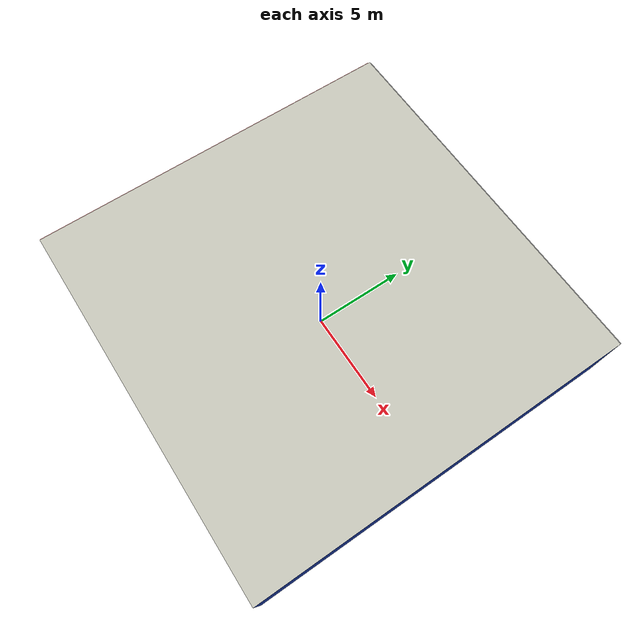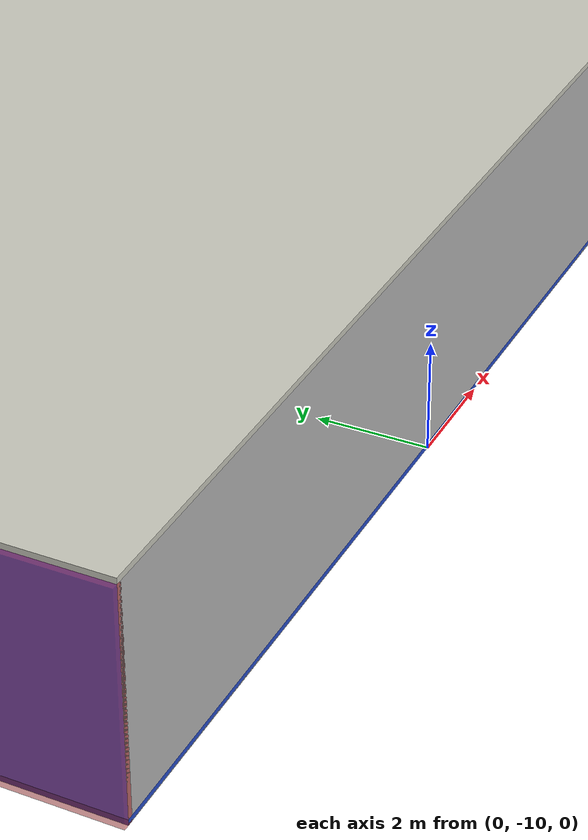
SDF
<sdf version="1.4">
 <world name="default">
  <physics type="ode">
   <max_step_size>0.001</max_step_size>
   <real_time_factor>1</real_time_factor>
   <real_time_update_rate>1000</real_time_update_rate>
   <gravity>0 0 -9.8</gravity>
  </physics>
  <scene><ambient>0.4 0.4 0.4 1</ambient><background>0.7 0.7 0.7 1</background><shadows>1</shadows></scene>
  <model name="Surrounding">
   <static>1</static>
   <link name="Ceiling">
    <collision name="Ceiling_Collision"><geometry><box><size>20 20 0.1</size></box></geometry></collision>
    <visual name="Ceiling_Visual">
     <geometry><box><size>20 20 0.1</size></box></geometry>
     <material>
      <script><uri>file://media/materials/scripts/gazebo.material</uri><name>Gazebo/PaintedWall</name></script>
     </material>
    </visual>
    <pose>0 0 4.05 0 0 0</pose>
   </link>
   <link name="Wall_South">
    <collision name="Wall_South_Collision">
     <geometry><box><size>20 0 4</size></box></geometry>
     <pose>0 0 2 0 -0 0</pose>
    </collision>
    <visual name="Wall_South_Visual">
     <pose>0 0 2 0 -0 0</pose>
     <geometry><box><size>20 0 4</size></box></geometry>
     <material>
      <script><uri>file://media/materials/scripts/gazebo.material</uri><name>Gazebo/PioneerBody</name></script>
     </material>
    </visual>
    <velocity_decay><linear>0</linear><angular>0</angular></velocity_decay>
    <pose>0 -10 0 0 -0 0</pose>
   </link>
   <link name="Wall_East">
    <collision name="Wall_21_Collision">
     <geometry><box><size>20 0 4</size></box></geometry>
     <pose>0 0 2 0 -0 0</pose>
    </collision>
    <visual name="Wall_21_Visual">
     <pose>0 0 2 0 -0 0</pose>
     <geometry><box><size>20 0 4</size></box></geometry>
     <material>
      <script><uri>file://media/materials/scripts/gazebo.material</uri><name>Gazebo/Blue</name></script>
     </material>
    </visual>
    <velocity_decay><linear>0</linear><angular>0</angular></velocity_decay>
    <pose>10 0 0 0 -0 1.5708</pose>
   </link>
   <link name="Wall_North">
    <collision name="Wall_22_Collision">
     <geometry><box><size>20 0.2 4</size></box></geometry>
     <pose>0 0 2 0 -0 0</pose>
    </collision>
    <visual name="Wall_22_Visual">
     <pose>0 0 2 0 -0 0</pose>
     <geometry><box><size>20 0.2 4</size></box></geometry>
     <material>
      <script><uri>file://media/materials/scripts/gazebo.material</uri><name>Gazebo/LightOff</name></script>
     </material>
    </visual>
    <velocity_decay><linear>0</linear><angular>0</angular></velocity_decay>
    <pose>0 10 0 0 -0 0</pose>
   </link>
   <link name="Wall_West">
    <collision name="Wall_23_Collision">
     <geometry><box><size>20 0.2 4</size></box></geometry>
     <pose>0 0 2 0 -0 0</pose>
    </collision>
    <visual name="Wall_23_Visual">
     <pose>0 0 2 0 -0 0</pose>
     <geometry><box><size>20 0.2 4</size></box></geometry>
     <material>
      <script><uri>file://media/materials/scripts/gazebo.material</uri><name>Gazebo/RedTransparent</name></script>
     </material>
    </visual>
    <velocity_decay><linear>0</linear><angular>0</angular></velocity_decay>
    <pose>-10 0 0 0 0 -1.5708</pose>
   </link>
   <link name="Ground_link">
    <collision name="collision">
     <pose>0 0 .05 0 -0 0</pose>
     <geometry><box><size>20 20 0.1</size></box></geometry>
    </collision>
    <visual name="visual">
     <pose>0 0 .05 0 -0 0</pose>
     <geometry><box><size>20 20 0.1</size></box></geometry>
     <material>
      <script><uri>file://media/materials/scripts/gazebo.material</uri><name>Gazebo/BlueLaser</name></script>
     </material>
    </visual>
   </link>
   <static>1</static>
  </model>
  <spherical_coordinates>
   <surface_model>EARTH_WGS84</surface_model>
   <latitude_deg>0</latitude_deg>
   <longitude_deg>0</longitude_deg>
   <elevation>0</elevation>
   <heading_deg>0</heading_deg>
  </spherical_coordinates>
  <light name="lightball_0" type="diffuse">
   <diffuse>0.8 0.8 0.8 1</diffuse>
   <specular>0.2 0.2 0.2 1</specular>
   <attenuation>
    <range>100</range>
    <constant>0.7</constant>
    <linear>0.01</linear>
    <quadratic>0.001</quadratic>
   </attenuation>
   <direction>-0.5 0.1 -0.9</direction>
   <pose>-3.74757150501 -2.6076606667 1.84429966862 0 0 0</pose>
  </light>
  <light name="lightball_1" type="diffuse">
   <diffuse>0.8 0.8 0.8 1</diffuse>
   <specular>0.2 0.2 0.2 1</specular>
   <attenuation>
    <range>100</range>
    <constant>0.7</constant>
    <linear>0.01</linear>
    <quadratic>0.001</quadratic>
   </attenuation>
   <direction>-0.5 0.1 -0.9</direction>
   <pose>0.734750347295 -6.3028518865 1.74604217853 0 0 0</pose>
  </light>
  <light name="lightball_2" type="diffuse">
   <diffuse>0.8 0.8 0.8 1</diffuse>
   <specular>0.2 0.2 0.2 1</specular>
   <attenuation>
    <range>100</range>
    <constant>0.7</constant>
    <linear>0.01</linear>
    <quadratic>0.001</quadratic>
   </attenuation>
   <direction>-0.5 0.1 -0.9</direction>
   <pose>4.47691980471 -3.57348693998 0.675177981425 0 0 0</pose>
  </light>
  <light name="lightball_3" type="diffuse">
   <diffuse>0.8 0.8 0.8 1</diffuse>
   <specular>0.2 0.2 0.2 1</specular>
   <attenuation>
    <range>100</range>
    <constant>0.7</constant>
    <linear>0.01</linear>
    <quadratic>0.001</quadratic>
   </attenuation>
   <direction>-0.5 0.1 -0.9</direction>
   <pose>8.13160478795 4.80523619585 0.552520722195 0 0 0</pose>
  </light>
  <light name="lightball_4" type="diffuse">
   <diffuse>0.8 0.8 0.8 1</diffuse>
   <specular>0.2 0.2 0.2 1</specular>
   <attenuation>
    <range>100</range>
    <constant>0.7</constant>
    <linear>0.01</linear>
    <quadratic>0.001</quadratic>
   </attenuation>
   <direction>-0.5 0.1 -0.9</direction>
   <pose>5.93312748515 9.01623725586 2.86606634139 0 0 0</pose>
  </light>
  <include><uri>model://cabinet</uri><pose>-7.94069498644 7.98751040111 0 0 0 0.0569104456228</pose></include>
 </world>
</sdf>

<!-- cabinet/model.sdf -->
<sdf version="1.5">
  <model name="cabinet">
    <static>true</static>
    <link name="cabinet_bottom_plate">
      <inertial>
        <pose>0 0 -1 0 0 0</pose>
        <inertia>
          <ixx>2.050000</ixx>
          <ixy>0</ixy>
          <ixz>0</ixz>
          <iyy>2.050000</iyy>
          <iyz>0</iyz>
          <izz>2.050000</izz>
        </inertia>
        <mass>25.000000</mass>
      </inertial>
      <collision name="cabinet_bottom_plate_geom">
        <pose>0 0 0.010000 0 0 0</pose>
        <geometry>
          <box>
            <size>0.450000 0.450000 0.020000</size>
          </box>
        </geometry>
      </collision>
      <visual name="cabinet_bottom_plate_geom_visual">
        <pose>0 0 0.010000 0 0 0</pose>
        <geometry>
          <box>
            <size>0.450000 0.450000 0.020000</size>
          </box>
        </geometry>
        <material>
          <script>
            <uri>model://media/materials/scripts/gazebo.material</uri>
            <name>Gazebo/Wood</name>
          </script>
        </material>
      </visual>
      <collision name="cabinet_bottom_plate_geom_cabinet_back_plate">
        <pose>0.235000 0 0.510000 0 0 0</pose>
        <geometry>
          <box>
            <size>0.020000 0.450000 1.020000</size>
          </box>
        </geometry>
      </collision>
      <visual name="cabinet_bottom_plate_geom_cabinet_back_plate_visual">
        <pose>0.235000 0 0.510000 0 0 0</pose>
        <geometry>
          <box>
            <size>0.020000 0.450000 1.020000</size>
          </box>
        </geometry>
        <material>
          <script>
            <uri>model://media/materials/scripts/gazebo.material</uri>
            <name>Gazebo/Wood</name>
          </script>
        </material>
      </visual>
      <collision name="cabinet_bottom_plate_geom_cabinet_left_plate">
        <pose>0 0.235000 0.510000 0 0 0</pose>
        <geometry>
          <box>
            <size>0.450000 0.020000 1.020000</size>
          </box>
        </geometry>
      </collision>
      <visual name="cabinet_bottom_plate_geom_cabinet_left_plate_visual">
        <pose>0 0.235000 0.510000 0 0 0</pose>
        <geometry>
          <box>
            <size>0.450000 0.020000 1.020000</size>
          </box>
        </geometry>
        <material>
          <script>
            <uri>model://media/materials/scripts/gazebo.material</uri>
            <name>Gazebo/Wood</name>
          </script>
        </material>
      </visual>
      <collision name="cabinet_bottom_plate_geom_cabinet_middle_plate">
        <pose>0 0 0.510000 0 0 0</pose>
        <geometry>
          <box>
            <size>0.450000 0.450000 0.020000</size>
          </box>
        </geometry>
      </collision>
      <visual name="cabinet_bottom_plate_geom_cabinet_middle_plate_visual">
        <pose>0 0 0.510000 0 0 0</pose>
        <geometry>
          <box>
            <size>0.450000 0.450000 0.020000</size>
          </box>
        </geometry>
        <material>
          <script>
            <uri>model://media/materials/scripts/gazebo.material</uri>
            <name>Gazebo/Wood</name>
          </script>
        </material>
      </visual>
      <collision name="cabinet_bottom_plate_geom_cabinet_right_plate">
        <pose>0 -0.235000 0.510000 0 0 0</pose>
        <geometry>
          <box>
            <size>0.450000 0.020000 1.020000</size>
          </box>
        </geometry>
      </collision>
      <visual name="cabinet_bottom_plate_geom_cabinet_right_plate_visual">
        <pose>0 -0.235000 0.510000 0 0 0</pose>
        <geometry>
          <box>
            <size>0.450000 0.020000 1.020000</size>
          </box>
        </geometry>
        <material>
          <script>
            <uri>model://media/materials/scripts/gazebo.material</uri>
            <name>Gazebo/Wood</name>
          </script>
        </material>
      </visual>
      <collision name="cabinet_bottom_plate_geom_cabinet_top_plate">
        <pose>0 0 1.010000 0 0 0</pose>
        <geometry>
          <box>
            <size>0.450000 0.450000 0.020000</size>
          </box>
        </geometry>
      </collision>
      <visual name="cabinet_bottom_plate_geom_cabinet_top_plate_visual">
        <pose>0 0 1.010000 0 0 0</pose>
        <geometry>
          <box>
            <size>0.450000 0.450000 0.020000</size>
          </box>
        </geometry>
        <material>
          <script>
            <uri>model://media/materials/scripts/gazebo.material</uri>
            <name>Gazebo/Wood</name>
          </script>
        </material>
      </visual>
    </link>
  </model>
</sdf>
